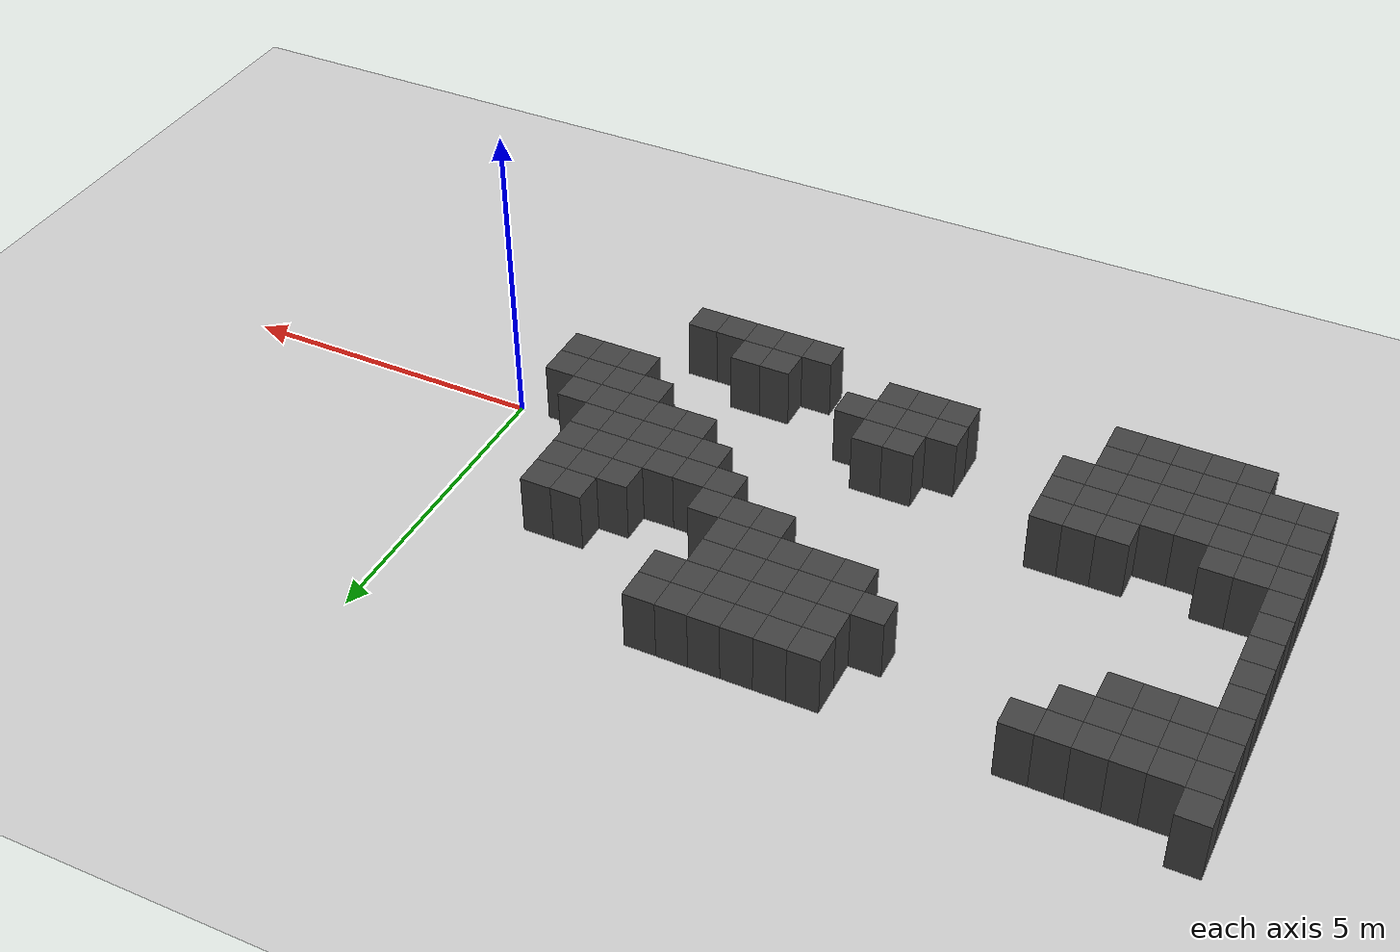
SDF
<sdf version="1.7">
 <world name="map_9687">
  <model name="ground_plane">
   <static>true</static>
   <link name="link">
    <collision name="collision">
     <geometry><plane><normal>0 0 1</normal><size>200 200</size></plane></geometry>
    </collision>
    <visual name="visual">
     <geometry><plane><normal>0 0 1</normal><size>200 200</size></plane></geometry>
     <material><ambient>0.8 0.8 0.8 1</ambient><diffuse>0.8 0.8 0.8 1</diffuse></material>
    </visual>
   </link>
  </model>
  <model name="maze_environment">
   <static>true</static>
   <link name="wall_286">
    <pose>-12.250 4.250 0.500 0 0 0</pose>
    <collision name="col"><geometry><box><size>0.5 0.5 1.0</size></box></geometry></collision>
    <visual name="vis">
     <geometry><box><size>0.5 0.5 1.0</size></box></geometry>
     <material><ambient>0.15 0.15 0.15 1</ambient><diffuse>0.25 0.25 0.25 1</diffuse></material>
    </visual>
   </link>
   <link name="wall_302">
    <pose>-12.250 3.750 0.500 0 0 0</pose>
    <collision name="col"><geometry><box><size>0.5 0.5 1.0</size></box></geometry></collision>
    <visual name="vis">
     <geometry><box><size>0.5 0.5 1.0</size></box></geometry>
     <material><ambient>0.15 0.15 0.15 1</ambient><diffuse>0.25 0.25 0.25 1</diffuse></material>
    </visual>
   </link>
   <link name="wall_303">
    <pose>-11.750 3.750 0.500 0 0 0</pose>
    <collision name="col"><geometry><box><size>0.5 0.5 1.0</size></box></geometry></collision>
    <visual name="vis">
     <geometry><box><size>0.5 0.5 1.0</size></box></geometry>
     <material><ambient>0.15 0.15 0.15 1</ambient><diffuse>0.25 0.25 0.25 1</diffuse></material>
    </visual>
   </link>
   <link name="wall_304">
    <pose>-11.250 3.750 0.500 0 0 0</pose>
    <collision name="col"><geometry><box><size>0.5 0.5 1.0</size></box></geometry></collision>
    <visual name="vis">
     <geometry><box><size>0.5 0.5 1.0</size></box></geometry>
     <material><ambient>0.15 0.15 0.15 1</ambient><diffuse>0.25 0.25 0.25 1</diffuse></material>
    </visual>
   </link>
   <link name="wall_305">
    <pose>-10.750 3.750 0.500 0 0 0</pose>
    <collision name="col"><geometry><box><size>0.5 0.5 1.0</size></box></geometry></collision>
    <visual name="vis">
     <geometry><box><size>0.5 0.5 1.0</size></box></geometry>
     <material><ambient>0.15 0.15 0.15 1</ambient><diffuse>0.25 0.25 0.25 1</diffuse></material>
    </visual>
   </link>
   <link name="wall_306">
    <pose>-10.250 3.750 0.500 0 0 0</pose>
    <collision name="col"><geometry><box><size>0.5 0.5 1.0</size></box></geometry></collision>
    <visual name="vis">
     <geometry><box><size>0.5 0.5 1.0</size></box></geometry>
     <material><ambient>0.15 0.15 0.15 1</ambient><diffuse>0.25 0.25 0.25 1</diffuse></material>
    </visual>
   </link>
   <link name="wall_307">
    <pose>-9.750 3.750 0.500 0 0 0</pose>
    <collision name="col"><geometry><box><size>0.5 0.5 1.0</size></box></geometry></collision>
    <visual name="vis">
     <geometry><box><size>0.5 0.5 1.0</size></box></geometry>
     <material><ambient>0.15 0.15 0.15 1</ambient><diffuse>0.25 0.25 0.25 1</diffuse></material>
    </visual>
   </link>
   <link name="wall_308">
    <pose>-6.750 3.750 0.500 0 0 0</pose>
    <collision name="col"><geometry><box><size>0.5 0.5 1.0</size></box></geometry></collision>
    <visual name="vis">
     <geometry><box><size>0.5 0.5 1.0</size></box></geometry>
     <material><ambient>0.15 0.15 0.15 1</ambient><diffuse>0.25 0.25 0.25 1</diffuse></material>
    </visual>
   </link>
   <link name="wall_309">
    <pose>-6.250 3.750 0.500 0 0 0</pose>
    <collision name="col"><geometry><box><size>0.5 0.5 1.0</size></box></geometry></collision>
    <visual name="vis">
     <geometry><box><size>0.5 0.5 1.0</size></box></geometry>
     <material><ambient>0.15 0.15 0.15 1</ambient><diffuse>0.25 0.25 0.25 1</diffuse></material>
    </visual>
   </link>
   <link name="wall_310">
    <pose>-5.750 3.750 0.500 0 0 0</pose>
    <collision name="col"><geometry><box><size>0.5 0.5 1.0</size></box></geometry></collision>
    <visual name="vis">
     <geometry><box><size>0.5 0.5 1.0</size></box></geometry>
     <material><ambient>0.15 0.15 0.15 1</ambient><diffuse>0.25 0.25 0.25 1</diffuse></material>
    </visual>
   </link>
   <link name="wall_311">
    <pose>-5.250 3.750 0.500 0 0 0</pose>
    <collision name="col"><geometry><box><size>0.5 0.5 1.0</size></box></geometry></collision>
    <visual name="vis">
     <geometry><box><size>0.5 0.5 1.0</size></box></geometry>
     <material><ambient>0.15 0.15 0.15 1</ambient><diffuse>0.25 0.25 0.25 1</diffuse></material>
    </visual>
   </link>
   <link name="wall_312">
    <pose>-4.750 3.750 0.500 0 0 0</pose>
    <collision name="col"><geometry><box><size>0.5 0.5 1.0</size></box></geometry></collision>
    <visual name="vis">
     <geometry><box><size>0.5 0.5 1.0</size></box></geometry>
     <material><ambient>0.15 0.15 0.15 1</ambient><diffuse>0.25 0.25 0.25 1</diffuse></material>
    </visual>
   </link>
   <link name="wall_313">
    <pose>-4.250 3.750 0.500 0 0 0</pose>
    <collision name="col"><geometry><box><size>0.5 0.5 1.0</size></box></geometry></collision>
    <visual name="vis">
     <geometry><box><size>0.5 0.5 1.0</size></box></geometry>
     <material><ambient>0.15 0.15 0.15 1</ambient><diffuse>0.25 0.25 0.25 1</diffuse></material>
    </visual>
   </link>
   <link name="wall_325">
    <pose>-12.250 3.250 0.500 0 0 0</pose>
    <collision name="col"><geometry><box><size>0.5 0.5 1.0</size></box></geometry></collision>
    <visual name="vis">
     <geometry><box><size>0.5 0.5 1.0</size></box></geometry>
     <material><ambient>0.15 0.15 0.15 1</ambient><diffuse>0.25 0.25 0.25 1</diffuse></material>
    </visual>
   </link>
   <link name="wall_326">
    <pose>-11.750 3.250 0.500 0 0 0</pose>
    <collision name="col"><geometry><box><size>0.5 0.5 1.0</size></box></geometry></collision>
    <visual name="vis">
     <geometry><box><size>0.5 0.5 1.0</size></box></geometry>
     <material><ambient>0.15 0.15 0.15 1</ambient><diffuse>0.25 0.25 0.25 1</diffuse></material>
    </visual>
   </link>
   <link name="wall_327">
    <pose>-11.250 3.250 0.500 0 0 0</pose>
    <collision name="col"><geometry><box><size>0.5 0.5 1.0</size></box></geometry></collision>
    <visual name="vis">
     <geometry><box><size>0.5 0.5 1.0</size></box></geometry>
     <material><ambient>0.15 0.15 0.15 1</ambient><diffuse>0.25 0.25 0.25 1</diffuse></material>
    </visual>
   </link>
   <link name="wall_328">
    <pose>-10.750 3.250 0.500 0 0 0</pose>
    <collision name="col"><geometry><box><size>0.5 0.5 1.0</size></box></geometry></collision>
    <visual name="vis">
     <geometry><box><size>0.5 0.5 1.0</size></box></geometry>
     <material><ambient>0.15 0.15 0.15 1</ambient><diffuse>0.25 0.25 0.25 1</diffuse></material>
    </visual>
   </link>
   <link name="wall_329">
    <pose>-10.250 3.250 0.500 0 0 0</pose>
    <collision name="col"><geometry><box><size>0.5 0.5 1.0</size></box></geometry></collision>
    <visual name="vis">
     <geometry><box><size>0.5 0.5 1.0</size></box></geometry>
     <material><ambient>0.15 0.15 0.15 1</ambient><diffuse>0.25 0.25 0.25 1</diffuse></material>
    </visual>
   </link>
   <link name="wall_330">
    <pose>-6.750 3.250 0.500 0 0 0</pose>
    <collision name="col"><geometry><box><size>0.5 0.5 1.0</size></box></geometry></collision>
    <visual name="vis">
     <geometry><box><size>0.5 0.5 1.0</size></box></geometry>
     <material><ambient>0.15 0.15 0.15 1</ambient><diffuse>0.25 0.25 0.25 1</diffuse></material>
    </visual>
   </link>
   <link name="wall_331">
    <pose>-6.250 3.250 0.500 0 0 0</pose>
    <collision name="col"><geometry><box><size>0.5 0.5 1.0</size></box></geometry></collision>
    <visual name="vis">
     <geometry><box><size>0.5 0.5 1.0</size></box></geometry>
     <material><ambient>0.15 0.15 0.15 1</ambient><diffuse>0.25 0.25 0.25 1</diffuse></material>
    </visual>
   </link>
   <link name="wall_332">
    <pose>-5.750 3.250 0.500 0 0 0</pose>
    <collision name="col"><geometry><box><size>0.5 0.5 1.0</size></box></geometry></collision>
    <visual name="vis">
     <geometry><box><size>0.5 0.5 1.0</size></box></geometry>
     <material><ambient>0.15 0.15 0.15 1</ambient><diffuse>0.25 0.25 0.25 1</diffuse></material>
    </visual>
   </link>
   <link name="wall_333">
    <pose>-5.250 3.250 0.500 0 0 0</pose>
    <collision name="col"><geometry><box><size>0.5 0.5 1.0</size></box></geometry></collision>
    <visual name="vis">
     <geometry><box><size>0.5 0.5 1.0</size></box></geometry>
     <material><ambient>0.15 0.15 0.15 1</ambient><diffuse>0.25 0.25 0.25 1</diffuse></material>
    </visual>
   </link>
   <link name="wall_334">
    <pose>-4.750 3.250 0.500 0 0 0</pose>
    <collision name="col"><geometry><box><size>0.5 0.5 1.0</size></box></geometry></collision>
    <visual name="vis">
     <geometry><box><size>0.5 0.5 1.0</size></box></geometry>
     <material><ambient>0.15 0.15 0.15 1</ambient><diffuse>0.25 0.25 0.25 1</diffuse></material>
    </visual>
   </link>
   <link name="wall_335">
    <pose>-4.250 3.250 0.500 0 0 0</pose>
    <collision name="col"><geometry><box><size>0.5 0.5 1.0</size></box></geometry></collision>
    <visual name="vis">
     <geometry><box><size>0.5 0.5 1.0</size></box></geometry>
     <material><ambient>0.15 0.15 0.15 1</ambient><diffuse>0.25 0.25 0.25 1</diffuse></material>
    </visual>
   </link>
   <link name="wall_347">
    <pose>-12.250 2.750 0.500 0 0 0</pose>
    <collision name="col"><geometry><box><size>0.5 0.5 1.0</size></box></geometry></collision>
    <visual name="vis">
     <geometry><box><size>0.5 0.5 1.0</size></box></geometry>
     <material><ambient>0.15 0.15 0.15 1</ambient><diffuse>0.25 0.25 0.25 1</diffuse></material>
    </visual>
   </link>
   <link name="wall_348">
    <pose>-11.750 2.750 0.500 0 0 0</pose>
    <collision name="col"><geometry><box><size>0.5 0.5 1.0</size></box></geometry></collision>
    <visual name="vis">
     <geometry><box><size>0.5 0.5 1.0</size></box></geometry>
     <material><ambient>0.15 0.15 0.15 1</ambient><diffuse>0.25 0.25 0.25 1</diffuse></material>
    </visual>
   </link>
   <link name="wall_349">
    <pose>-11.250 2.750 0.500 0 0 0</pose>
    <collision name="col"><geometry><box><size>0.5 0.5 1.0</size></box></geometry></collision>
    <visual name="vis">
     <geometry><box><size>0.5 0.5 1.0</size></box></geometry>
     <material><ambient>0.15 0.15 0.15 1</ambient><diffuse>0.25 0.25 0.25 1</diffuse></material>
    </visual>
   </link>
   <link name="wall_350">
    <pose>-10.750 2.750 0.500 0 0 0</pose>
    <collision name="col"><geometry><box><size>0.5 0.5 1.0</size></box></geometry></collision>
    <visual name="vis">
     <geometry><box><size>0.5 0.5 1.0</size></box></geometry>
     <material><ambient>0.15 0.15 0.15 1</ambient><diffuse>0.25 0.25 0.25 1</diffuse></material>
    </visual>
   </link>
   <link name="wall_351">
    <pose>-7.250 2.750 0.500 0 0 0</pose>
    <collision name="col"><geometry><box><size>0.5 0.5 1.0</size></box></geometry></collision>
    <visual name="vis">
     <geometry><box><size>0.5 0.5 1.0</size></box></geometry>
     <material><ambient>0.15 0.15 0.15 1</ambient><diffuse>0.25 0.25 0.25 1</diffuse></material>
    </visual>
   </link>
   <link name="wall_352">
    <pose>-6.750 2.750 0.500 0 0 0</pose>
    <collision name="col"><geometry><box><size>0.5 0.5 1.0</size></box></geometry></collision>
    <visual name="vis">
     <geometry><box><size>0.5 0.5 1.0</size></box></geometry>
     <material><ambient>0.15 0.15 0.15 1</ambient><diffuse>0.25 0.25 0.25 1</diffuse></material>
    </visual>
   </link>
   <link name="wall_353">
    <pose>-6.250 2.750 0.500 0 0 0</pose>
    <collision name="col"><geometry><box><size>0.5 0.5 1.0</size></box></geometry></collision>
    <visual name="vis">
     <geometry><box><size>0.5 0.5 1.0</size></box></geometry>
     <material><ambient>0.15 0.15 0.15 1</ambient><diffuse>0.25 0.25 0.25 1</diffuse></material>
    </visual>
   </link>
   <link name="wall_354">
    <pose>-5.750 2.750 0.500 0 0 0</pose>
    <collision name="col"><geometry><box><size>0.5 0.5 1.0</size></box></geometry></collision>
    <visual name="vis">
     <geometry><box><size>0.5 0.5 1.0</size></box></geometry>
     <material><ambient>0.15 0.15 0.15 1</ambient><diffuse>0.25 0.25 0.25 1</diffuse></material>
    </visual>
   </link>
   <link name="wall_355">
    <pose>-5.250 2.750 0.500 0 0 0</pose>
    <collision name="col"><geometry><box><size>0.5 0.5 1.0</size></box></geometry></collision>
    <visual name="vis">
     <geometry><box><size>0.5 0.5 1.0</size></box></geometry>
     <material><ambient>0.15 0.15 0.15 1</ambient><diffuse>0.25 0.25 0.25 1</diffuse></material>
    </visual>
   </link>
   <link name="wall_356">
    <pose>-4.750 2.750 0.500 0 0 0</pose>
    <collision name="col"><geometry><box><size>0.5 0.5 1.0</size></box></geometry></collision>
    <visual name="vis">
     <geometry><box><size>0.5 0.5 1.0</size></box></geometry>
     <material><ambient>0.15 0.15 0.15 1</ambient><diffuse>0.25 0.25 0.25 1</diffuse></material>
    </visual>
   </link>
   <link name="wall_366">
    <pose>-12.250 2.250 0.500 0 0 0</pose>
    <collision name="col"><geometry><box><size>0.5 0.5 1.0</size></box></geometry></collision>
    <visual name="vis">
     <geometry><box><size>0.5 0.5 1.0</size></box></geometry>
     <material><ambient>0.15 0.15 0.15 1</ambient><diffuse>0.25 0.25 0.25 1</diffuse></material>
    </visual>
   </link>
   <link name="wall_367">
    <pose>-6.750 2.250 0.500 0 0 0</pose>
    <collision name="col"><geometry><box><size>0.5 0.5 1.0</size></box></geometry></collision>
    <visual name="vis">
     <geometry><box><size>0.5 0.5 1.0</size></box></geometry>
     <material><ambient>0.15 0.15 0.15 1</ambient><diffuse>0.25 0.25 0.25 1</diffuse></material>
    </visual>
   </link>
   <link name="wall_368">
    <pose>-6.250 2.250 0.500 0 0 0</pose>
    <collision name="col"><geometry><box><size>0.5 0.5 1.0</size></box></geometry></collision>
    <visual name="vis">
     <geometry><box><size>0.5 0.5 1.0</size></box></geometry>
     <material><ambient>0.15 0.15 0.15 1</ambient><diffuse>0.25 0.25 0.25 1</diffuse></material>
    </visual>
   </link>
   <link name="wall_369">
    <pose>-5.750 2.250 0.500 0 0 0</pose>
    <collision name="col"><geometry><box><size>0.5 0.5 1.0</size></box></geometry></collision>
    <visual name="vis">
     <geometry><box><size>0.5 0.5 1.0</size></box></geometry>
     <material><ambient>0.15 0.15 0.15 1</ambient><diffuse>0.25 0.25 0.25 1</diffuse></material>
    </visual>
   </link>
   <link name="wall_370">
    <pose>-5.250 2.250 0.500 0 0 0</pose>
    <collision name="col"><geometry><box><size>0.5 0.5 1.0</size></box></geometry></collision>
    <visual name="vis">
     <geometry><box><size>0.5 0.5 1.0</size></box></geometry>
     <material><ambient>0.15 0.15 0.15 1</ambient><diffuse>0.25 0.25 0.25 1</diffuse></material>
    </visual>
   </link>
   <link name="wall_371">
    <pose>-4.750 2.250 0.500 0 0 0</pose>
    <collision name="col"><geometry><box><size>0.5 0.5 1.0</size></box></geometry></collision>
    <visual name="vis">
     <geometry><box><size>0.5 0.5 1.0</size></box></geometry>
     <material><ambient>0.15 0.15 0.15 1</ambient><diffuse>0.25 0.25 0.25 1</diffuse></material>
    </visual>
   </link>
   <link name="wall_372">
    <pose>-2.250 2.250 0.500 0 0 0</pose>
    <collision name="col"><geometry><box><size>0.5 0.5 1.0</size></box></geometry></collision>
    <visual name="vis">
     <geometry><box><size>0.5 0.5 1.0</size></box></geometry>
     <material><ambient>0.15 0.15 0.15 1</ambient><diffuse>0.25 0.25 0.25 1</diffuse></material>
    </visual>
   </link>
   <link name="wall_373">
    <pose>-1.750 2.250 0.500 0 0 0</pose>
    <collision name="col"><geometry><box><size>0.5 0.5 1.0</size></box></geometry></collision>
    <visual name="vis">
     <geometry><box><size>0.5 0.5 1.0</size></box></geometry>
     <material><ambient>0.15 0.15 0.15 1</ambient><diffuse>0.25 0.25 0.25 1</diffuse></material>
    </visual>
   </link>
   <link name="wall_384">
    <pose>-12.250 1.750 0.500 0 0 0</pose>
    <collision name="col"><geometry><box><size>0.5 0.5 1.0</size></box></geometry></collision>
    <visual name="vis">
     <geometry><box><size>0.5 0.5 1.0</size></box></geometry>
     <material><ambient>0.15 0.15 0.15 1</ambient><diffuse>0.25 0.25 0.25 1</diffuse></material>
    </visual>
   </link>
   <link name="wall_385">
    <pose>-5.250 1.750 0.500 0 0 0</pose>
    <collision name="col"><geometry><box><size>0.5 0.5 1.0</size></box></geometry></collision>
    <visual name="vis">
     <geometry><box><size>0.5 0.5 1.0</size></box></geometry>
     <material><ambient>0.15 0.15 0.15 1</ambient><diffuse>0.25 0.25 0.25 1</diffuse></material>
    </visual>
   </link>
   <link name="wall_386">
    <pose>-4.750 1.750 0.500 0 0 0</pose>
    <collision name="col"><geometry><box><size>0.5 0.5 1.0</size></box></geometry></collision>
    <visual name="vis">
     <geometry><box><size>0.5 0.5 1.0</size></box></geometry>
     <material><ambient>0.15 0.15 0.15 1</ambient><diffuse>0.25 0.25 0.25 1</diffuse></material>
    </visual>
   </link>
   <link name="wall_387">
    <pose>-4.250 1.750 0.500 0 0 0</pose>
    <collision name="col"><geometry><box><size>0.5 0.5 1.0</size></box></geometry></collision>
    <visual name="vis">
     <geometry><box><size>0.5 0.5 1.0</size></box></geometry>
     <material><ambient>0.15 0.15 0.15 1</ambient><diffuse>0.25 0.25 0.25 1</diffuse></material>
    </visual>
   </link>
   <link name="wall_388">
    <pose>-2.750 1.750 0.500 0 0 0</pose>
    <collision name="col"><geometry><box><size>0.5 0.5 1.0</size></box></geometry></collision>
    <visual name="vis">
     <geometry><box><size>0.5 0.5 1.0</size></box></geometry>
     <material><ambient>0.15 0.15 0.15 1</ambient><diffuse>0.25 0.25 0.25 1</diffuse></material>
    </visual>
   </link>
   <link name="wall_389">
    <pose>-2.250 1.750 0.500 0 0 0</pose>
    <collision name="col"><geometry><box><size>0.5 0.5 1.0</size></box></geometry></collision>
    <visual name="vis">
     <geometry><box><size>0.5 0.5 1.0</size></box></geometry>
     <material><ambient>0.15 0.15 0.15 1</ambient><diffuse>0.25 0.25 0.25 1</diffuse></material>
    </visual>
   </link>
   <link name="wall_390">
    <pose>-1.750 1.750 0.500 0 0 0</pose>
    <collision name="col"><geometry><box><size>0.5 0.5 1.0</size></box></geometry></collision>
    <visual name="vis">
     <geometry><box><size>0.5 0.5 1.0</size></box></geometry>
     <material><ambient>0.15 0.15 0.15 1</ambient><diffuse>0.25 0.25 0.25 1</diffuse></material>
    </visual>
   </link>
   <link name="wall_400">
    <pose>-12.250 1.250 0.500 0 0 0</pose>
    <collision name="col"><geometry><box><size>0.5 0.5 1.0</size></box></geometry></collision>
    <visual name="vis">
     <geometry><box><size>0.5 0.5 1.0</size></box></geometry>
     <material><ambient>0.15 0.15 0.15 1</ambient><diffuse>0.25 0.25 0.25 1</diffuse></material>
    </visual>
   </link>
   <link name="wall_401">
    <pose>-4.250 1.250 0.500 0 0 0</pose>
    <collision name="col"><geometry><box><size>0.5 0.5 1.0</size></box></geometry></collision>
    <visual name="vis">
     <geometry><box><size>0.5 0.5 1.0</size></box></geometry>
     <material><ambient>0.15 0.15 0.15 1</ambient><diffuse>0.25 0.25 0.25 1</diffuse></material>
    </visual>
   </link>
   <link name="wall_402">
    <pose>-3.750 1.250 0.500 0 0 0</pose>
    <collision name="col"><geometry><box><size>0.5 0.5 1.0</size></box></geometry></collision>
    <visual name="vis">
     <geometry><box><size>0.5 0.5 1.0</size></box></geometry>
     <material><ambient>0.15 0.15 0.15 1</ambient><diffuse>0.25 0.25 0.25 1</diffuse></material>
    </visual>
   </link>
   <link name="wall_403">
    <pose>-3.250 1.250 0.500 0 0 0</pose>
    <collision name="col"><geometry><box><size>0.5 0.5 1.0</size></box></geometry></collision>
    <visual name="vis">
     <geometry><box><size>0.5 0.5 1.0</size></box></geometry>
     <material><ambient>0.15 0.15 0.15 1</ambient><diffuse>0.25 0.25 0.25 1</diffuse></material>
    </visual>
   </link>
   <link name="wall_404">
    <pose>-2.750 1.250 0.500 0 0 0</pose>
    <collision name="col"><geometry><box><size>0.5 0.5 1.0</size></box></geometry></collision>
    <visual name="vis">
     <geometry><box><size>0.5 0.5 1.0</size></box></geometry>
     <material><ambient>0.15 0.15 0.15 1</ambient><diffuse>0.25 0.25 0.25 1</diffuse></material>
    </visual>
   </link>
   <link name="wall_405">
    <pose>-2.250 1.250 0.500 0 0 0</pose>
    <collision name="col"><geometry><box><size>0.5 0.5 1.0</size></box></geometry></collision>
    <visual name="vis">
     <geometry><box><size>0.5 0.5 1.0</size></box></geometry>
     <material><ambient>0.15 0.15 0.15 1</ambient><diffuse>0.25 0.25 0.25 1</diffuse></material>
    </visual>
   </link>
   <link name="wall_406">
    <pose>-1.750 1.250 0.500 0 0 0</pose>
    <collision name="col"><geometry><box><size>0.5 0.5 1.0</size></box></geometry></collision>
    <visual name="vis">
     <geometry><box><size>0.5 0.5 1.0</size></box></geometry>
     <material><ambient>0.15 0.15 0.15 1</ambient><diffuse>0.25 0.25 0.25 1</diffuse></material>
    </visual>
   </link>
   <link name="wall_412">
    <pose>-12.250 0.750 0.500 0 0 0</pose>
    <collision name="col"><geometry><box><size>0.5 0.5 1.0</size></box></geometry></collision>
    <visual name="vis">
     <geometry><box><size>0.5 0.5 1.0</size></box></geometry>
     <material><ambient>0.15 0.15 0.15 1</ambient><diffuse>0.25 0.25 0.25 1</diffuse></material>
    </visual>
   </link>
   <link name="wall_413">
    <pose>-3.750 0.750 0.500 0 0 0</pose>
    <collision name="col"><geometry><box><size>0.5 0.5 1.0</size></box></geometry></collision>
    <visual name="vis">
     <geometry><box><size>0.5 0.5 1.0</size></box></geometry>
     <material><ambient>0.15 0.15 0.15 1</ambient><diffuse>0.25 0.25 0.25 1</diffuse></material>
    </visual>
   </link>
   <link name="wall_414">
    <pose>-3.250 0.750 0.500 0 0 0</pose>
    <collision name="col"><geometry><box><size>0.5 0.5 1.0</size></box></geometry></collision>
    <visual name="vis">
     <geometry><box><size>0.5 0.5 1.0</size></box></geometry>
     <material><ambient>0.15 0.15 0.15 1</ambient><diffuse>0.25 0.25 0.25 1</diffuse></material>
    </visual>
   </link>
   <link name="wall_415">
    <pose>-2.750 0.750 0.500 0 0 0</pose>
    <collision name="col"><geometry><box><size>0.5 0.5 1.0</size></box></geometry></collision>
    <visual name="vis">
     <geometry><box><size>0.5 0.5 1.0</size></box></geometry>
     <material><ambient>0.15 0.15 0.15 1</ambient><diffuse>0.25 0.25 0.25 1</diffuse></material>
    </visual>
   </link>
   <link name="wall_416">
    <pose>-2.250 0.750 0.500 0 0 0</pose>
    <collision name="col"><geometry><box><size>0.5 0.5 1.0</size></box></geometry></collision>
    <visual name="vis">
     <geometry><box><size>0.5 0.5 1.0</size></box></geometry>
     <material><ambient>0.15 0.15 0.15 1</ambient><diffuse>0.25 0.25 0.25 1</diffuse></material>
    </visual>
   </link>
   <link name="wall_417">
    <pose>-1.750 0.750 0.500 0 0 0</pose>
    <collision name="col"><geometry><box><size>0.5 0.5 1.0</size></box></geometry></collision>
    <visual name="vis">
     <geometry><box><size>0.5 0.5 1.0</size></box></geometry>
     <material><ambient>0.15 0.15 0.15 1</ambient><diffuse>0.25 0.25 0.25 1</diffuse></material>
    </visual>
   </link>
   <link name="wall_425">
    <pose>-12.250 0.250 0.500 0 0 0</pose>
    <collision name="col"><geometry><box><size>0.5 0.5 1.0</size></box></geometry></collision>
    <visual name="vis">
     <geometry><box><size>0.5 0.5 1.0</size></box></geometry>
     <material><ambient>0.15 0.15 0.15 1</ambient><diffuse>0.25 0.25 0.25 1</diffuse></material>
    </visual>
   </link>
   <link name="wall_426">
    <pose>-3.250 0.250 0.500 0 0 0</pose>
    <collision name="col"><geometry><box><size>0.5 0.5 1.0</size></box></geometry></collision>
    <visual name="vis">
     <geometry><box><size>0.5 0.5 1.0</size></box></geometry>
     <material><ambient>0.15 0.15 0.15 1</ambient><diffuse>0.25 0.25 0.25 1</diffuse></material>
    </visual>
   </link>
   <link name="wall_427">
    <pose>-2.750 0.250 0.500 0 0 0</pose>
    <collision name="col"><geometry><box><size>0.5 0.5 1.0</size></box></geometry></collision>
    <visual name="vis">
     <geometry><box><size>0.5 0.5 1.0</size></box></geometry>
     <material><ambient>0.15 0.15 0.15 1</ambient><diffuse>0.25 0.25 0.25 1</diffuse></material>
    </visual>
   </link>
   <link name="wall_428">
    <pose>-2.250 0.250 0.500 0 0 0</pose>
    <collision name="col"><geometry><box><size>0.5 0.5 1.0</size></box></geometry></collision>
    <visual name="vis">
     <geometry><box><size>0.5 0.5 1.0</size></box></geometry>
     <material><ambient>0.15 0.15 0.15 1</ambient><diffuse>0.25 0.25 0.25 1</diffuse></material>
    </visual>
   </link>
   <link name="wall_429">
    <pose>-1.750 0.250 0.500 0 0 0</pose>
    <collision name="col"><geometry><box><size>0.5 0.5 1.0</size></box></geometry></collision>
    <visual name="vis">
     <geometry><box><size>0.5 0.5 1.0</size></box></geometry>
     <material><ambient>0.15 0.15 0.15 1</ambient><diffuse>0.25 0.25 0.25 1</diffuse></material>
    </visual>
   </link>
   <link name="wall_430">
    <pose>-1.250 0.250 0.500 0 0 0</pose>
    <collision name="col"><geometry><box><size>0.5 0.5 1.0</size></box></geometry></collision>
    <visual name="vis">
     <geometry><box><size>0.5 0.5 1.0</size></box></geometry>
     <material><ambient>0.15 0.15 0.15 1</ambient><diffuse>0.25 0.25 0.25 1</diffuse></material>
    </visual>
   </link>
   <link name="wall_439">
    <pose>-12.250 -0.250 0.500 0 0 0</pose>
    <collision name="col"><geometry><box><size>0.5 0.5 1.0</size></box></geometry></collision>
    <visual name="vis">
     <geometry><box><size>0.5 0.5 1.0</size></box></geometry>
     <material><ambient>0.15 0.15 0.15 1</ambient><diffuse>0.25 0.25 0.25 1</diffuse></material>
    </visual>
   </link>
   <link name="wall_440">
    <pose>-11.750 -0.250 0.500 0 0 0</pose>
    <collision name="col"><geometry><box><size>0.5 0.5 1.0</size></box></geometry></collision>
    <visual name="vis">
     <geometry><box><size>0.5 0.5 1.0</size></box></geometry>
     <material><ambient>0.15 0.15 0.15 1</ambient><diffuse>0.25 0.25 0.25 1</diffuse></material>
    </visual>
   </link>
   <link name="wall_441">
    <pose>-11.250 -0.250 0.500 0 0 0</pose>
    <collision name="col"><geometry><box><size>0.5 0.5 1.0</size></box></geometry></collision>
    <visual name="vis">
     <geometry><box><size>0.5 0.5 1.0</size></box></geometry>
     <material><ambient>0.15 0.15 0.15 1</ambient><diffuse>0.25 0.25 0.25 1</diffuse></material>
    </visual>
   </link>
   <link name="wall_442">
    <pose>-9.750 -0.250 0.500 0 0 0</pose>
    <collision name="col"><geometry><box><size>0.5 0.5 1.0</size></box></geometry></collision>
    <visual name="vis">
     <geometry><box><size>0.5 0.5 1.0</size></box></geometry>
     <material><ambient>0.15 0.15 0.15 1</ambient><diffuse>0.25 0.25 0.25 1</diffuse></material>
    </visual>
   </link>
   <link name="wall_443">
    <pose>-9.250 -0.250 0.500 0 0 0</pose>
    <collision name="col"><geometry><box><size>0.5 0.5 1.0</size></box></geometry></collision>
    <visual name="vis">
     <geometry><box><size>0.5 0.5 1.0</size></box></geometry>
     <material><ambient>0.15 0.15 0.15 1</ambient><diffuse>0.25 0.25 0.25 1</diffuse></material>
    </visual>
   </link>
   <link name="wall_444">
    <pose>-8.750 -0.250 0.500 0 0 0</pose>
    <collision name="col"><geometry><box><size>0.5 0.5 1.0</size></box></geometry></collision>
    <visual name="vis">
     <geometry><box><size>0.5 0.5 1.0</size></box></geometry>
     <material><ambient>0.15 0.15 0.15 1</ambient><diffuse>0.25 0.25 0.25 1</diffuse></material>
    </visual>
   </link>
   <link name="wall_445">
    <pose>-2.250 -0.250 0.500 0 0 0</pose>
    <collision name="col"><geometry><box><size>0.5 0.5 1.0</size></box></geometry></collision>
    <visual name="vis">
     <geometry><box><size>0.5 0.5 1.0</size></box></geometry>
     <material><ambient>0.15 0.15 0.15 1</ambient><diffuse>0.25 0.25 0.25 1</diffuse></material>
    </visual>
   </link>
   <link name="wall_446">
    <pose>-1.750 -0.250 0.500 0 0 0</pose>
    <collision name="col"><geometry><box><size>0.5 0.5 1.0</size></box></geometry></collision>
    <visual name="vis">
     <geometry><box><size>0.5 0.5 1.0</size></box></geometry>
     <material><ambient>0.15 0.15 0.15 1</ambient><diffuse>0.25 0.25 0.25 1</diffuse></material>
    </visual>
   </link>
   <link name="wall_447">
    <pose>-1.250 -0.250 0.500 0 0 0</pose>
    <collision name="col"><geometry><box><size>0.5 0.5 1.0</size></box></geometry></collision>
    <visual name="vis">
     <geometry><box><size>0.5 0.5 1.0</size></box></geometry>
     <material><ambient>0.15 0.15 0.15 1</ambient><diffuse>0.25 0.25 0.25 1</diffuse></material>
    </visual>
   </link>
   <link name="wall_448">
    <pose>-0.750 -0.250 0.500 0 0 0</pose>
    <collision name="col"><geometry><box><size>0.5 0.5 1.0</size></box></geometry></collision>
    <visual name="vis">
     <geometry><box><size>0.5 0.5 1.0</size></box></geometry>
     <material><ambient>0.15 0.15 0.15 1</ambient><diffuse>0.25 0.25 0.25 1</diffuse></material>
    </visual>
   </link>
   <link name="wall_458">
    <pose>-12.250 -0.750 0.500 0 0 0</pose>
    <collision name="col"><geometry><box><size>0.5 0.5 1.0</size></box></geometry></collision>
    <visual name="vis">
     <geometry><box><size>0.5 0.5 1.0</size></box></geometry>
     <material><ambient>0.15 0.15 0.15 1</ambient><diffuse>0.25 0.25 0.25 1</diffuse></material>
    </visual>
   </link>
   <link name="wall_459">
    <pose>-11.750 -0.750 0.500 0 0 0</pose>
    <collision name="col"><geometry><box><size>0.5 0.5 1.0</size></box></geometry></collision>
    <visual name="vis">
     <geometry><box><size>0.5 0.5 1.0</size></box></geometry>
     <material><ambient>0.15 0.15 0.15 1</ambient><diffuse>0.25 0.25 0.25 1</diffuse></material>
    </visual>
   </link>
   <link name="wall_460">
    <pose>-11.250 -0.750 0.500 0 0 0</pose>
    <collision name="col"><geometry><box><size>0.5 0.5 1.0</size></box></geometry></collision>
    <visual name="vis">
     <geometry><box><size>0.5 0.5 1.0</size></box></geometry>
     <material><ambient>0.15 0.15 0.15 1</ambient><diffuse>0.25 0.25 0.25 1</diffuse></material>
    </visual>
   </link>
   <link name="wall_461">
    <pose>-10.750 -0.750 0.500 0 0 0</pose>
    <collision name="col"><geometry><box><size>0.5 0.5 1.0</size></box></geometry></collision>
    <visual name="vis">
     <geometry><box><size>0.5 0.5 1.0</size></box></geometry>
     <material><ambient>0.15 0.15 0.15 1</ambient><diffuse>0.25 0.25 0.25 1</diffuse></material>
    </visual>
   </link>
   <link name="wall_462">
    <pose>-10.250 -0.750 0.500 0 0 0</pose>
    <collision name="col"><geometry><box><size>0.5 0.5 1.0</size></box></geometry></collision>
    <visual name="vis">
     <geometry><box><size>0.5 0.5 1.0</size></box></geometry>
     <material><ambient>0.15 0.15 0.15 1</ambient><diffuse>0.25 0.25 0.25 1</diffuse></material>
    </visual>
   </link>
   <link name="wall_463">
    <pose>-9.750 -0.750 0.500 0 0 0</pose>
    <collision name="col"><geometry><box><size>0.5 0.5 1.0</size></box></geometry></collision>
    <visual name="vis">
     <geometry><box><size>0.5 0.5 1.0</size></box></geometry>
     <material><ambient>0.15 0.15 0.15 1</ambient><diffuse>0.25 0.25 0.25 1</diffuse></material>
    </visual>
   </link>
   <link name="wall_464">
    <pose>-9.250 -0.750 0.500 0 0 0</pose>
    <collision name="col"><geometry><box><size>0.5 0.5 1.0</size></box></geometry></collision>
    <visual name="vis">
     <geometry><box><size>0.5 0.5 1.0</size></box></geometry>
     <material><ambient>0.15 0.15 0.15 1</ambient><diffuse>0.25 0.25 0.25 1</diffuse></material>
    </visual>
   </link>
   <link name="wall_465">
    <pose>-8.750 -0.750 0.500 0 0 0</pose>
    <collision name="col"><geometry><box><size>0.5 0.5 1.0</size></box></geometry></collision>
    <visual name="vis">
     <geometry><box><size>0.5 0.5 1.0</size></box></geometry>
     <material><ambient>0.15 0.15 0.15 1</ambient><diffuse>0.25 0.25 0.25 1</diffuse></material>
    </visual>
   </link>
   <link name="wall_466">
    <pose>-6.250 -0.750 0.500 0 0 0</pose>
    <collision name="col"><geometry><box><size>0.5 0.5 1.0</size></box></geometry></collision>
    <visual name="vis">
     <geometry><box><size>0.5 0.5 1.0</size></box></geometry>
     <material><ambient>0.15 0.15 0.15 1</ambient><diffuse>0.25 0.25 0.25 1</diffuse></material>
    </visual>
   </link>
   <link name="wall_467">
    <pose>-5.750 -0.750 0.500 0 0 0</pose>
    <collision name="col"><geometry><box><size>0.5 0.5 1.0</size></box></geometry></collision>
    <visual name="vis">
     <geometry><box><size>0.5 0.5 1.0</size></box></geometry>
     <material><ambient>0.15 0.15 0.15 1</ambient><diffuse>0.25 0.25 0.25 1</diffuse></material>
    </visual>
   </link>
   <link name="wall_468">
    <pose>-1.750 -0.750 0.500 0 0 0</pose>
    <collision name="col"><geometry><box><size>0.5 0.5 1.0</size></box></geometry></collision>
    <visual name="vis">
     <geometry><box><size>0.5 0.5 1.0</size></box></geometry>
     <material><ambient>0.15 0.15 0.15 1</ambient><diffuse>0.25 0.25 0.25 1</diffuse></material>
    </visual>
   </link>
   <link name="wall_469">
    <pose>-1.250 -0.750 0.500 0 0 0</pose>
    <collision name="col"><geometry><box><size>0.5 0.5 1.0</size></box></geometry></collision>
    <visual name="vis">
     <geometry><box><size>0.5 0.5 1.0</size></box></geometry>
     <material><ambient>0.15 0.15 0.15 1</ambient><diffuse>0.25 0.25 0.25 1</diffuse></material>
    </visual>
   </link>
   <link name="wall_470">
    <pose>-0.750 -0.750 0.500 0 0 0</pose>
    <collision name="col"><geometry><box><size>0.5 0.5 1.0</size></box></geometry></collision>
    <visual name="vis">
     <geometry><box><size>0.5 0.5 1.0</size></box></geometry>
     <material><ambient>0.15 0.15 0.15 1</ambient><diffuse>0.25 0.25 0.25 1</diffuse></material>
    </visual>
   </link>
   <link name="wall_482">
    <pose>-12.250 -1.250 0.500 0 0 0</pose>
    <collision name="col"><geometry><box><size>0.5 0.5 1.0</size></box></geometry></collision>
    <visual name="vis">
     <geometry><box><size>0.5 0.5 1.0</size></box></geometry>
     <material><ambient>0.15 0.15 0.15 1</ambient><diffuse>0.25 0.25 0.25 1</diffuse></material>
    </visual>
   </link>
   <link name="wall_483">
    <pose>-11.750 -1.250 0.500 0 0 0</pose>
    <collision name="col"><geometry><box><size>0.5 0.5 1.0</size></box></geometry></collision>
    <visual name="vis">
     <geometry><box><size>0.5 0.5 1.0</size></box></geometry>
     <material><ambient>0.15 0.15 0.15 1</ambient><diffuse>0.25 0.25 0.25 1</diffuse></material>
    </visual>
   </link>
   <link name="wall_484">
    <pose>-11.250 -1.250 0.500 0 0 0</pose>
    <collision name="col"><geometry><box><size>0.5 0.5 1.0</size></box></geometry></collision>
    <visual name="vis">
     <geometry><box><size>0.5 0.5 1.0</size></box></geometry>
     <material><ambient>0.15 0.15 0.15 1</ambient><diffuse>0.25 0.25 0.25 1</diffuse></material>
    </visual>
   </link>
   <link name="wall_485">
    <pose>-10.750 -1.250 0.500 0 0 0</pose>
    <collision name="col"><geometry><box><size>0.5 0.5 1.0</size></box></geometry></collision>
    <visual name="vis">
     <geometry><box><size>0.5 0.5 1.0</size></box></geometry>
     <material><ambient>0.15 0.15 0.15 1</ambient><diffuse>0.25 0.25 0.25 1</diffuse></material>
    </visual>
   </link>
   <link name="wall_486">
    <pose>-10.250 -1.250 0.500 0 0 0</pose>
    <collision name="col"><geometry><box><size>0.5 0.5 1.0</size></box></geometry></collision>
    <visual name="vis">
     <geometry><box><size>0.5 0.5 1.0</size></box></geometry>
     <material><ambient>0.15 0.15 0.15 1</ambient><diffuse>0.25 0.25 0.25 1</diffuse></material>
    </visual>
   </link>
   <link name="wall_487">
    <pose>-9.750 -1.250 0.500 0 0 0</pose>
    <collision name="col"><geometry><box><size>0.5 0.5 1.0</size></box></geometry></collision>
    <visual name="vis">
     <geometry><box><size>0.5 0.5 1.0</size></box></geometry>
     <material><ambient>0.15 0.15 0.15 1</ambient><diffuse>0.25 0.25 0.25 1</diffuse></material>
    </visual>
   </link>
   <link name="wall_488">
    <pose>-9.250 -1.250 0.500 0 0 0</pose>
    <collision name="col"><geometry><box><size>0.5 0.5 1.0</size></box></geometry></collision>
    <visual name="vis">
     <geometry><box><size>0.5 0.5 1.0</size></box></geometry>
     <material><ambient>0.15 0.15 0.15 1</ambient><diffuse>0.25 0.25 0.25 1</diffuse></material>
    </visual>
   </link>
   <link name="wall_489">
    <pose>-8.750 -1.250 0.500 0 0 0</pose>
    <collision name="col"><geometry><box><size>0.5 0.5 1.0</size></box></geometry></collision>
    <visual name="vis">
     <geometry><box><size>0.5 0.5 1.0</size></box></geometry>
     <material><ambient>0.15 0.15 0.15 1</ambient><diffuse>0.25 0.25 0.25 1</diffuse></material>
    </visual>
   </link>
   <link name="wall_490">
    <pose>-6.750 -1.250 0.500 0 0 0</pose>
    <collision name="col"><geometry><box><size>0.5 0.5 1.0</size></box></geometry></collision>
    <visual name="vis">
     <geometry><box><size>0.5 0.5 1.0</size></box></geometry>
     <material><ambient>0.15 0.15 0.15 1</ambient><diffuse>0.25 0.25 0.25 1</diffuse></material>
    </visual>
   </link>
   <link name="wall_491">
    <pose>-6.250 -1.250 0.500 0 0 0</pose>
    <collision name="col"><geometry><box><size>0.5 0.5 1.0</size></box></geometry></collision>
    <visual name="vis">
     <geometry><box><size>0.5 0.5 1.0</size></box></geometry>
     <material><ambient>0.15 0.15 0.15 1</ambient><diffuse>0.25 0.25 0.25 1</diffuse></material>
    </visual>
   </link>
   <link name="wall_492">
    <pose>-5.750 -1.250 0.500 0 0 0</pose>
    <collision name="col"><geometry><box><size>0.5 0.5 1.0</size></box></geometry></collision>
    <visual name="vis">
     <geometry><box><size>0.5 0.5 1.0</size></box></geometry>
     <material><ambient>0.15 0.15 0.15 1</ambient><diffuse>0.25 0.25 0.25 1</diffuse></material>
    </visual>
   </link>
   <link name="wall_493">
    <pose>-5.250 -1.250 0.500 0 0 0</pose>
    <collision name="col"><geometry><box><size>0.5 0.5 1.0</size></box></geometry></collision>
    <visual name="vis">
     <geometry><box><size>0.5 0.5 1.0</size></box></geometry>
     <material><ambient>0.15 0.15 0.15 1</ambient><diffuse>0.25 0.25 0.25 1</diffuse></material>
    </visual>
   </link>
   <link name="wall_514">
    <pose>-12.250 -1.750 0.500 0 0 0</pose>
    <collision name="col"><geometry><box><size>0.5 0.5 1.0</size></box></geometry></collision>
    <visual name="vis">
     <geometry><box><size>0.5 0.5 1.0</size></box></geometry>
     <material><ambient>0.15 0.15 0.15 1</ambient><diffuse>0.25 0.25 0.25 1</diffuse></material>
    </visual>
   </link>
   <link name="wall_515">
    <pose>-11.750 -1.750 0.500 0 0 0</pose>
    <collision name="col"><geometry><box><size>0.5 0.5 1.0</size></box></geometry></collision>
    <visual name="vis">
     <geometry><box><size>0.5 0.5 1.0</size></box></geometry>
     <material><ambient>0.15 0.15 0.15 1</ambient><diffuse>0.25 0.25 0.25 1</diffuse></material>
    </visual>
   </link>
   <link name="wall_516">
    <pose>-11.250 -1.750 0.500 0 0 0</pose>
    <collision name="col"><geometry><box><size>0.5 0.5 1.0</size></box></geometry></collision>
    <visual name="vis">
     <geometry><box><size>0.5 0.5 1.0</size></box></geometry>
     <material><ambient>0.15 0.15 0.15 1</ambient><diffuse>0.25 0.25 0.25 1</diffuse></material>
    </visual>
   </link>
   <link name="wall_517">
    <pose>-10.750 -1.750 0.500 0 0 0</pose>
    <collision name="col"><geometry><box><size>0.5 0.5 1.0</size></box></geometry></collision>
    <visual name="vis">
     <geometry><box><size>0.5 0.5 1.0</size></box></geometry>
     <material><ambient>0.15 0.15 0.15 1</ambient><diffuse>0.25 0.25 0.25 1</diffuse></material>
    </visual>
   </link>
   <link name="wall_518">
    <pose>-10.250 -1.750 0.500 0 0 0</pose>
    <collision name="col"><geometry><box><size>0.5 0.5 1.0</size></box></geometry></collision>
    <visual name="vis">
     <geometry><box><size>0.5 0.5 1.0</size></box></geometry>
     <material><ambient>0.15 0.15 0.15 1</ambient><diffuse>0.25 0.25 0.25 1</diffuse></material>
    </visual>
   </link>
   <link name="wall_519">
    <pose>-9.750 -1.750 0.500 0 0 0</pose>
    <collision name="col"><geometry><box><size>0.5 0.5 1.0</size></box></geometry></collision>
    <visual name="vis">
     <geometry><box><size>0.5 0.5 1.0</size></box></geometry>
     <material><ambient>0.15 0.15 0.15 1</ambient><diffuse>0.25 0.25 0.25 1</diffuse></material>
    </visual>
   </link>
   <link name="wall_520">
    <pose>-9.250 -1.750 0.500 0 0 0</pose>
    <collision name="col"><geometry><box><size>0.5 0.5 1.0</size></box></geometry></collision>
    <visual name="vis">
     <geometry><box><size>0.5 0.5 1.0</size></box></geometry>
     <material><ambient>0.15 0.15 0.15 1</ambient><diffuse>0.25 0.25 0.25 1</diffuse></material>
    </visual>
   </link>
   <link name="wall_521">
    <pose>-6.750 -1.750 0.500 0 0 0</pose>
    <collision name="col"><geometry><box><size>0.5 0.5 1.0</size></box></geometry></collision>
    <visual name="vis">
     <geometry><box><size>0.5 0.5 1.0</size></box></geometry>
     <material><ambient>0.15 0.15 0.15 1</ambient><diffuse>0.25 0.25 0.25 1</diffuse></material>
    </visual>
   </link>
   <link name="wall_522">
    <pose>-6.250 -1.750 0.500 0 0 0</pose>
    <collision name="col"><geometry><box><size>0.5 0.5 1.0</size></box></geometry></collision>
    <visual name="vis">
     <geometry><box><size>0.5 0.5 1.0</size></box></geometry>
     <material><ambient>0.15 0.15 0.15 1</ambient><diffuse>0.25 0.25 0.25 1</diffuse></material>
    </visual>
   </link>
   <link name="wall_523">
    <pose>-5.750 -1.750 0.500 0 0 0</pose>
    <collision name="col"><geometry><box><size>0.5 0.5 1.0</size></box></geometry></collision>
    <visual name="vis">
     <geometry><box><size>0.5 0.5 1.0</size></box></geometry>
     <material><ambient>0.15 0.15 0.15 1</ambient><diffuse>0.25 0.25 0.25 1</diffuse></material>
    </visual>
   </link>
   <link name="wall_524">
    <pose>-3.750 -1.750 0.500 0 0 0</pose>
    <collision name="col"><geometry><box><size>0.5 0.5 1.0</size></box></geometry></collision>
    <visual name="vis">
     <geometry><box><size>0.5 0.5 1.0</size></box></geometry>
     <material><ambient>0.15 0.15 0.15 1</ambient><diffuse>0.25 0.25 0.25 1</diffuse></material>
    </visual>
   </link>
   <link name="wall_525">
    <pose>-3.250 -1.750 0.500 0 0 0</pose>
    <collision name="col"><geometry><box><size>0.5 0.5 1.0</size></box></geometry></collision>
    <visual name="vis">
     <geometry><box><size>0.5 0.5 1.0</size></box></geometry>
     <material><ambient>0.15 0.15 0.15 1</ambient><diffuse>0.25 0.25 0.25 1</diffuse></material>
    </visual>
   </link>
   <link name="wall_548">
    <pose>-11.250 -2.250 0.500 0 0 0</pose>
    <collision name="col"><geometry><box><size>0.5 0.5 1.0</size></box></geometry></collision>
    <visual name="vis">
     <geometry><box><size>0.5 0.5 1.0</size></box></geometry>
     <material><ambient>0.15 0.15 0.15 1</ambient><diffuse>0.25 0.25 0.25 1</diffuse></material>
    </visual>
   </link>
   <link name="wall_549">
    <pose>-10.750 -2.250 0.500 0 0 0</pose>
    <collision name="col"><geometry><box><size>0.5 0.5 1.0</size></box></geometry></collision>
    <visual name="vis">
     <geometry><box><size>0.5 0.5 1.0</size></box></geometry>
     <material><ambient>0.15 0.15 0.15 1</ambient><diffuse>0.25 0.25 0.25 1</diffuse></material>
    </visual>
   </link>
   <link name="wall_550">
    <pose>-10.250 -2.250 0.500 0 0 0</pose>
    <collision name="col"><geometry><box><size>0.5 0.5 1.0</size></box></geometry></collision>
    <visual name="vis">
     <geometry><box><size>0.5 0.5 1.0</size></box></geometry>
     <material><ambient>0.15 0.15 0.15 1</ambient><diffuse>0.25 0.25 0.25 1</diffuse></material>
    </visual>
   </link>
   <link name="wall_551">
    <pose>-9.750 -2.250 0.500 0 0 0</pose>
    <collision name="col"><geometry><box><size>0.5 0.5 1.0</size></box></geometry></collision>
    <visual name="vis">
     <geometry><box><size>0.5 0.5 1.0</size></box></geometry>
     <material><ambient>0.15 0.15 0.15 1</ambient><diffuse>0.25 0.25 0.25 1</diffuse></material>
    </visual>
   </link>
   <link name="wall_552">
    <pose>-9.250 -2.250 0.500 0 0 0</pose>
    <collision name="col"><geometry><box><size>0.5 0.5 1.0</size></box></geometry></collision>
    <visual name="vis">
     <geometry><box><size>0.5 0.5 1.0</size></box></geometry>
     <material><ambient>0.15 0.15 0.15 1</ambient><diffuse>0.25 0.25 0.25 1</diffuse></material>
    </visual>
   </link>
   <link name="wall_553">
    <pose>-4.250 -2.250 0.500 0 0 0</pose>
    <collision name="col"><geometry><box><size>0.5 0.5 1.0</size></box></geometry></collision>
    <visual name="vis">
     <geometry><box><size>0.5 0.5 1.0</size></box></geometry>
     <material><ambient>0.15 0.15 0.15 1</ambient><diffuse>0.25 0.25 0.25 1</diffuse></material>
    </visual>
   </link>
   <link name="wall_554">
    <pose>-3.750 -2.250 0.500 0 0 0</pose>
    <collision name="col"><geometry><box><size>0.5 0.5 1.0</size></box></geometry></collision>
    <visual name="vis">
     <geometry><box><size>0.5 0.5 1.0</size></box></geometry>
     <material><ambient>0.15 0.15 0.15 1</ambient><diffuse>0.25 0.25 0.25 1</diffuse></material>
    </visual>
   </link>
   <link name="wall_555">
    <pose>-3.250 -2.250 0.500 0 0 0</pose>
    <collision name="col"><geometry><box><size>0.5 0.5 1.0</size></box></geometry></collision>
    <visual name="vis">
     <geometry><box><size>0.5 0.5 1.0</size></box></geometry>
     <material><ambient>0.15 0.15 0.15 1</ambient><diffuse>0.25 0.25 0.25 1</diffuse></material>
    </visual>
   </link>
   <link name="wall_556">
    <pose>-2.750 -2.250 0.500 0 0 0</pose>
    <collision name="col"><geometry><box><size>0.5 0.5 1.0</size></box></geometry></collision>
    <visual name="vis">
     <geometry><box><size>0.5 0.5 1.0</size></box></geometry>
     <material><ambient>0.15 0.15 0.15 1</ambient><diffuse>0.25 0.25 0.25 1</diffuse></material>
    </visual>
   </link>
   <link name="wall_557">
    <pose>-2.250 -2.250 0.500 0 0 0</pose>
    <collision name="col"><geometry><box><size>0.5 0.5 1.0</size></box></geometry></collision>
    <visual name="vis">
     <geometry><box><size>0.5 0.5 1.0</size></box></geometry>
     <material><ambient>0.15 0.15 0.15 1</ambient><diffuse>0.25 0.25 0.25 1</diffuse></material>
    </visual>
   </link>
  </model>
 </world>
</sdf>
